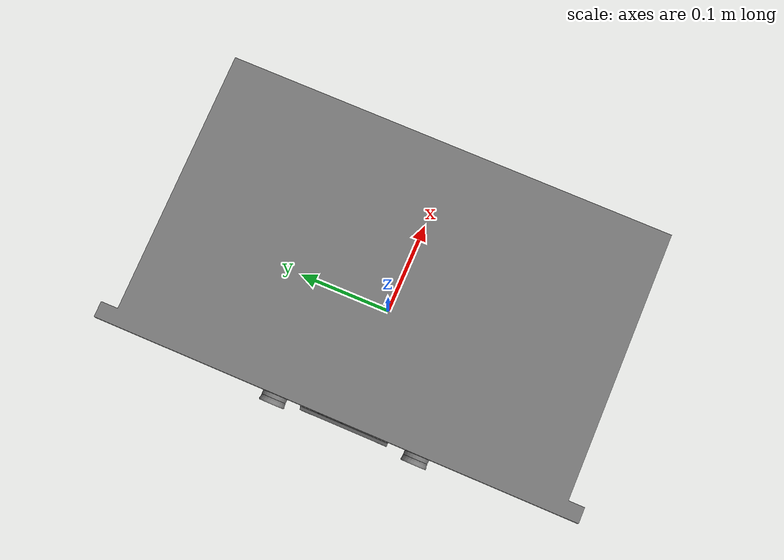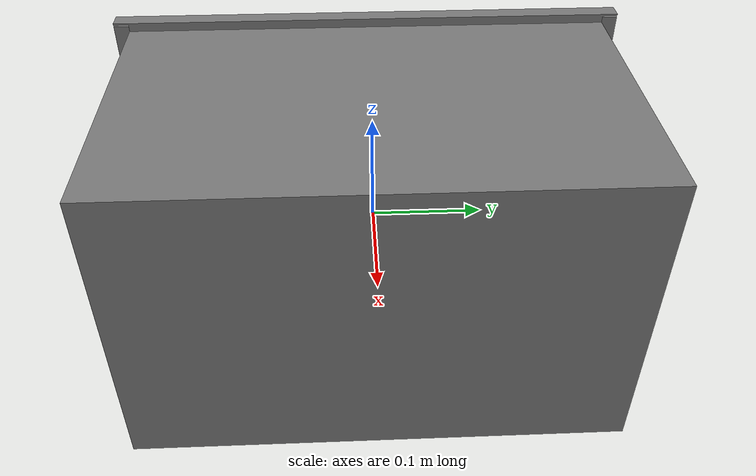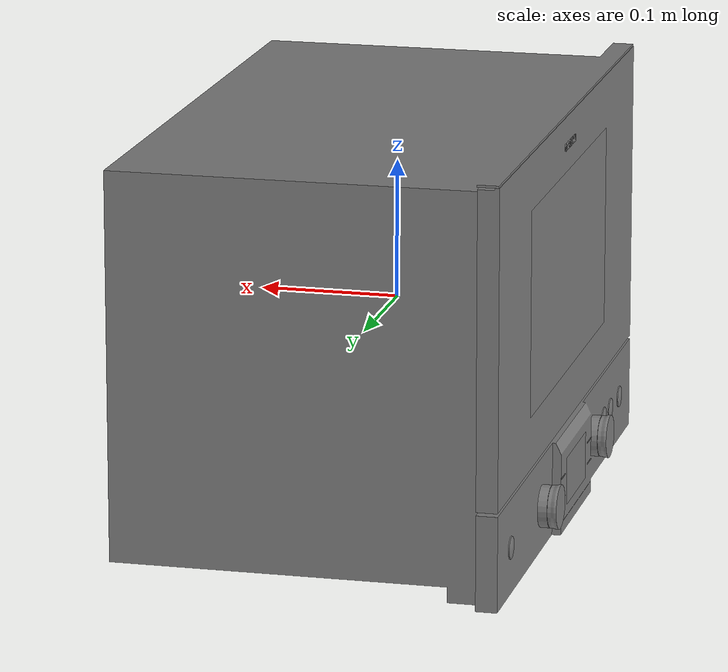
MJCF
<mujoco model="partnet_95bc6fb98624ea3229d75ea275a1cb4e">
    <compiler angle="radian" />
    <size njmax="500" nconmax="100" />
    <asset>
        <mesh name="original-22" file="original-22.stl" scale="0.3 0.3 0.3" />
        <mesh name="original-18" file="original-18.stl" scale="0.3 0.3 0.3" />
        <mesh name="original-20" file="original-20.stl" scale="0.3 0.3 0.3" />
        <mesh name="original-21" file="original-21.stl" scale="0.3 0.3 0.3" />
        <mesh name="original-23" file="original-23.stl" scale="0.3 0.3 0.3" />
        <mesh name="original-10" file="original-10.stl" scale="0.3 0.3 0.3" />
        <mesh name="original-11" file="original-11.stl" scale="0.3 0.3 0.3" />
        <mesh name="original-16" file="original-16.stl" scale="0.3 0.3 0.3" />
        <mesh name="original-1" file="original-1.stl" scale="0.3 0.3 0.3" />
        <mesh name="original-12" file="original-12.stl" scale="0.3 0.3 0.3" />
        <mesh name="original-13" file="original-13.stl" scale="0.3 0.3 0.3" />
        <mesh name="original-14" file="original-14.stl" scale="0.3 0.3 0.3" />
        <mesh name="original-15" file="original-15.stl" scale="0.3 0.3 0.3" />
        <mesh name="original-8" file="original-8.stl" scale="0.3 0.3 0.3" />
        <mesh name="original-7" file="original-7.stl" scale="0.3 0.3 0.3" />
        <mesh name="original-6" file="original-6.stl" scale="0.3 0.3 0.3" />
        <mesh name="original-5" file="original-5.stl" scale="0.3 0.3 0.3" />
        <mesh name="original-4" file="original-4.stl" scale="0.3 0.3 0.3" />
    </asset>
    <worldbody>
    <body>
        <body name="object">
        <geom quat="0.5 0.5 -0.5 -0.5" type="mesh" group="0" mesh="original-16" contype="0" conaffinity="0" />
        <geom quat="0.5 0.5 -0.5 -0.5" type="mesh" group="0" mesh="original-1" contype="0" conaffinity="0" />
        <geom quat="0.5 0.5 -0.5 -0.5" type="mesh" group="0" mesh="original-12" contype="0" conaffinity="0" />
        <geom quat="0.5 0.5 -0.5 -0.5" type="mesh" group="0" mesh="original-13" contype="0" conaffinity="0" />
        <geom quat="0.5 0.5 -0.5 -0.5" type="mesh" group="0" mesh="original-14" contype="0" conaffinity="0" />
        <geom quat="0.5 0.5 -0.5 -0.5" type="mesh" group="0" mesh="original-15" contype="0" conaffinity="0" />
        <geom quat="0.5 0.5 -0.5 -0.5" type="mesh" group="0" mesh="original-8" contype="0" conaffinity="0" />
        <geom quat="0.5 0.5 -0.5 -0.5" type="mesh" group="0" mesh="original-7" contype="0" conaffinity="0" />
        <geom quat="0.5 0.5 -0.5 -0.5" type="mesh" group="0" mesh="original-6" contype="0" conaffinity="0" />
        <geom quat="0.5 0.5 -0.5 -0.5" type="mesh" group="0" mesh="original-5" contype="0" conaffinity="0" />
        <geom quat="0.5 0.5 -0.5 -0.5" type="mesh" group="0" mesh="original-4" contype="0" conaffinity="0" />
        <body name="link_0" pos="-0.11999459999999999 -0.23371109999999998 -0.0793455" quat="0.5 0.5 -0.5 -0.5" gravcomp="1">
            <inertial pos="-0.2341296 0.1074204 -0.0017824019999999998" quat="-0.000227368 0.707107 -0.000227368 0.707107" mass="55.3349" diaginertia="12.4802 10.1354 2.36575" />
            <joint name="joint_0" pos="0.0 0.0 0.0" axis="1 0 0" limited="true" range="0 1.5708" />
            <geom pos="-0.23371109999999998 0.0793455 -0.11999459999999999" type="mesh" group="0" mesh="original-22" />
            <geom pos="-0.23371109999999998 0.0793455 -0.11999459999999999" type="mesh" group="0" mesh="original-18" />
            <geom pos="-0.23371109999999998 0.0793455 -0.11999459999999999" type="mesh" group="0" mesh="original-20" />
            <geom pos="-0.23371109999999998 0.0793455 -0.11999459999999999" type="mesh" group="0" mesh="original-21" />
            <geom pos="-0.23371109999999998 0.0793455 -0.11999459999999999" type="mesh" group="0" mesh="original-23" />
        </body>
        <body name="link_1" pos="-0.138726 0.090318 -0.1205808" quat="0.5 0.5 -0.5 -0.5">
            <inertial pos="0.00021634349999999998 -6.018659999999999e-06 -0.002689845" quat="0.0504976 0.705301 -0.0504949 0.705302" mass="0.167985" diaginertia="0.000238287 0.000124597 0.000124597" />
            <joint name="joint_1" pos="0.0 0.0 0.0" axis="0 0 1" />
            <geom pos="0.090318 0.1205808 -0.138726" type="mesh" group="0" mesh="original-10" />
        </body>
        <body name="link_2" pos="-0.138726 -0.08972820000000001 -0.1209165" quat="0.5 0.5 -0.5 -0.5">
            <inertial pos="-0.000463104 0.000329814 -0.0026898419999999996" quat="0.0197923 0.70683 -0.0197896 0.70683" mass="0.167985" diaginertia="0.000238286 0.000124597 0.000124596" />
            <joint name="joint_2" pos="0.0 0.0 0.0" axis="0 0 1" />
            <geom pos="-0.08972820000000001 0.1209165 -0.138726" type="mesh" group="0" mesh="original-11" />
        </body>
    </body>
        <site name="bottom_site" pos="0 0 -0.3" rgba="0 0 0 0" size="0.005" />
        <site name="top_site" pos="0 0 0.3" rgba="0 0 0 0" size="0.005" />
        <site name="horizontal_radius_site" pos="0.3 0 0" rgba="0 0 0 0" size="0.1" />
    </body>
    </worldbody>
</mujoco>
